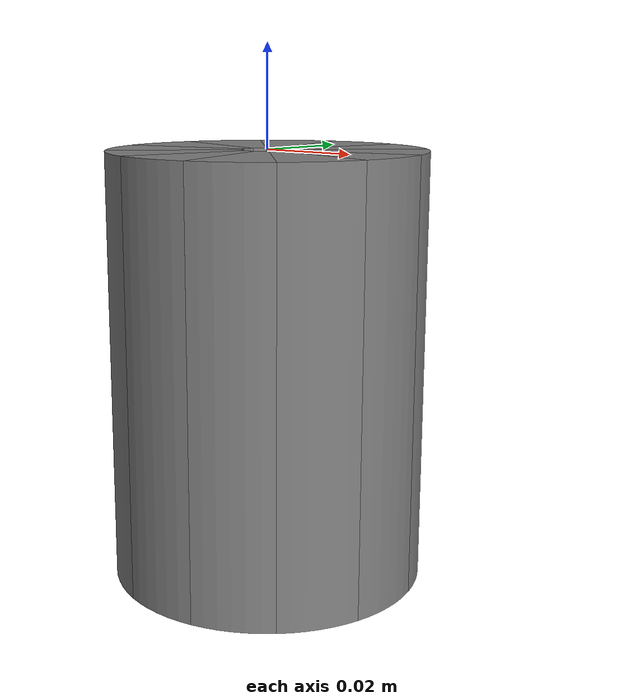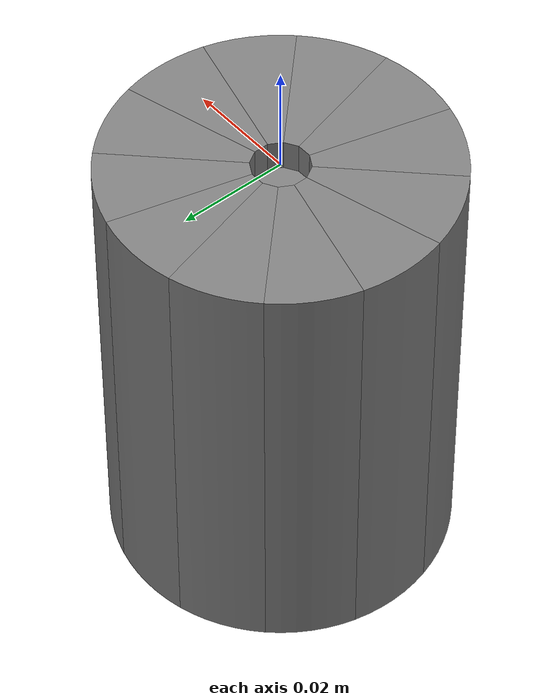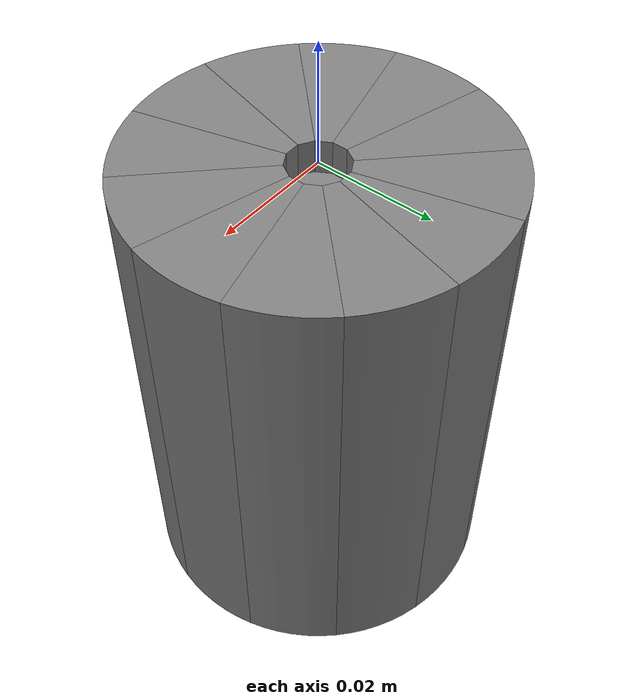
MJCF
<mujoco model="hole">
  <default>
    <default class="collision">
      <geom group="0" type="mesh" solimp="0.9 0.95 0.001 0.5 2" density="1000" solref=".004 1" condim="6"/>
    </default>
  </default>
  <asset>
    <texture file="../textures/red-wood.png" type="cube" name="red-wood" />
    <material name="plate_mat" texture="red-wood" texrepeat="3 3" specular="0.4" shininess="0.1" />
    <mesh file="meshes/guriguri-round-hole/Body3.stl" name="guriguri-round-hole_body3_mesh"/>
    <mesh file="meshes/guriguri-round-hole/Body4.stl" name="guriguri-round-hole_body4_mesh"/>
    <mesh file="meshes/guriguri-round-hole/Body5.stl" name="guriguri-round-hole_body5_mesh"/>
    <mesh file="meshes/guriguri-round-hole/Body6.stl" name="guriguri-round-hole_body6_mesh"/>
    <mesh file="meshes/guriguri-round-hole/Body7.stl" name="guriguri-round-hole_body7_mesh"/>
    <mesh file="meshes/guriguri-round-hole/Body8.stl" name="guriguri-round-hole_body8_mesh"/>
    <mesh file="meshes/guriguri-round-hole/Body9.stl" name="guriguri-round-hole_body9_mesh"/>
    <mesh file="meshes/guriguri-round-hole/Body10.stl" name="guriguri-round-hole_body10_mesh"/>
    <mesh file="meshes/guriguri-round-hole/Body11.stl" name="guriguri-round-hole_body11_mesh"/>
    <mesh file="meshes/guriguri-round-hole/Body12.stl" name="guriguri-round-hole_body12_mesh"/>
    <mesh file="meshes/guriguri-round-hole/Body13.stl" name="guriguri-round-hole_body13_mesh"/>
    <mesh file="meshes/guriguri-round-hole/Body14.stl" name="guriguri-round-hole_body14_mesh"/>
    <mesh file="meshes/guriguri-round-hole/Body15.stl" name="guriguri-round-hole_body15_mesh"/>
  </asset>
  <worldbody>
    <body>
      <body name="object" pos="0 0 0">
        <geom mesh="guriguri-round-hole_body15_mesh" class="collision" group="0" solref=".004 1"/>
        <geom mesh="guriguri-round-hole_body3_mesh" class="collision" group="0" solref=".004 1"/>
        <geom mesh="guriguri-round-hole_body4_mesh" class="collision" group="0" solref=".004 1"/>
        <geom mesh="guriguri-round-hole_body5_mesh" class="collision" group="0" solref=".004 1"/>
        <geom mesh="guriguri-round-hole_body6_mesh" class="collision" group="0" solref=".004 1"/>
        <geom mesh="guriguri-round-hole_body7_mesh" class="collision" group="0" solref=".004 1"/>
        <geom mesh="guriguri-round-hole_body8_mesh" class="collision" group="0" solref=".004 1"/>
        <geom mesh="guriguri-round-hole_body9_mesh" class="collision" group="0" solref=".004 1"/>
        <geom mesh="guriguri-round-hole_body10_mesh" class="collision" group="0" solref=".004 1"/>
        <geom mesh="guriguri-round-hole_body11_mesh" class="collision" group="0" solref=".004 1"/>
        <geom mesh="guriguri-round-hole_body12_mesh" class="collision" group="0" solref=".004 1"/>
        <geom mesh="guriguri-round-hole_body13_mesh" class="collision" group="0" solref=".004 1"/>
        <geom mesh="guriguri-round-hole_body14_mesh" class="collision" group="0" solref=".004 1"/>
        <geom mesh="guriguri-round-hole_body15_mesh" class="collision" group="0" solref=".004 1"/>
      </body>
      <site rgba="0 0 0 0" size="0.005" pos="0 0 -0.085" name="bottom_site"/>
      <site rgba="0 0 0 0" size="0.005" pos="0 0 0.0" name="top_site"/>
      <site rgba="0 0 0 0" size="0.005" pos="0.062 0.062 0" name="horizontal_radius_site"/>
    </body>
  </worldbody>
</mujoco>
